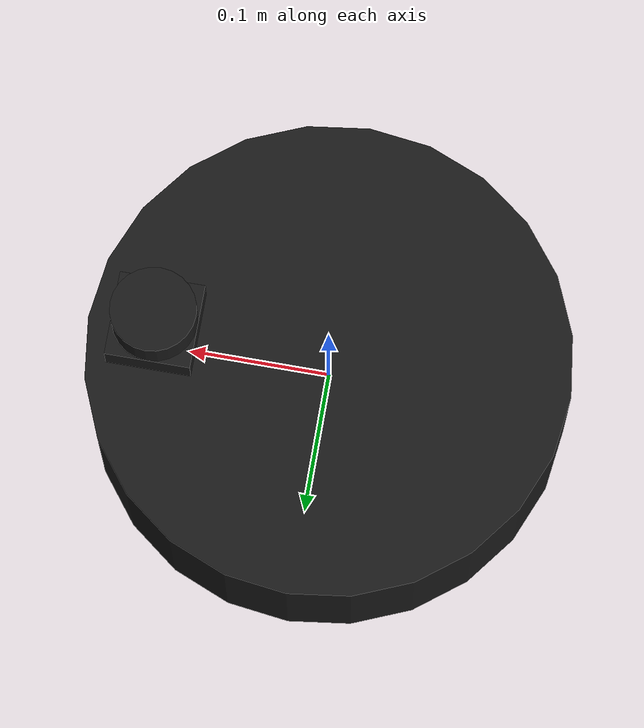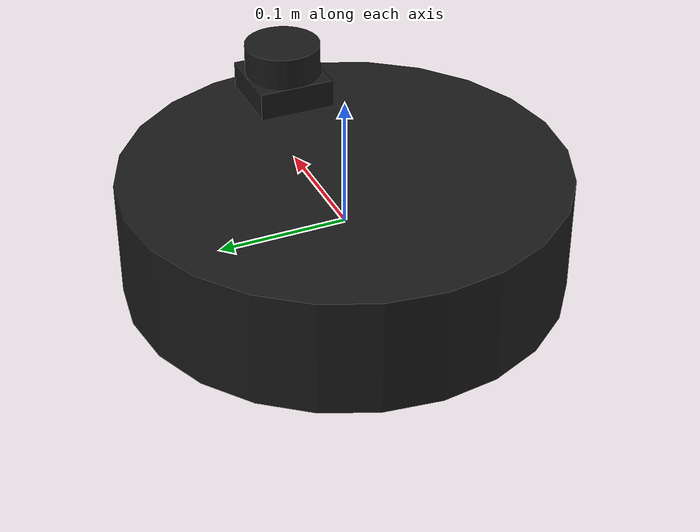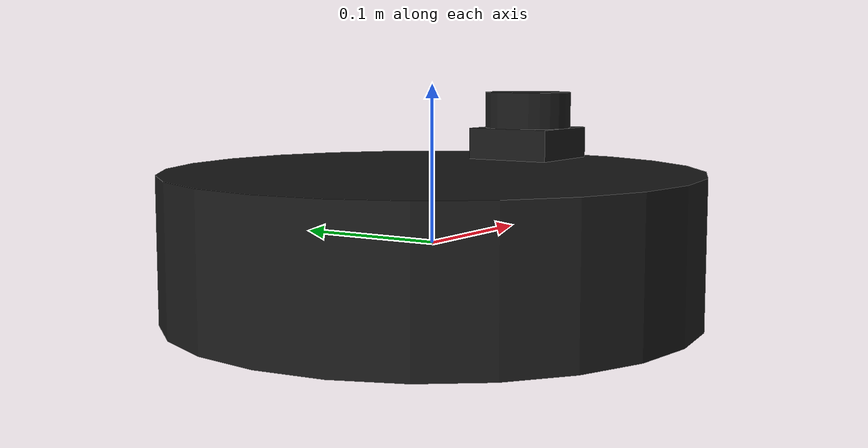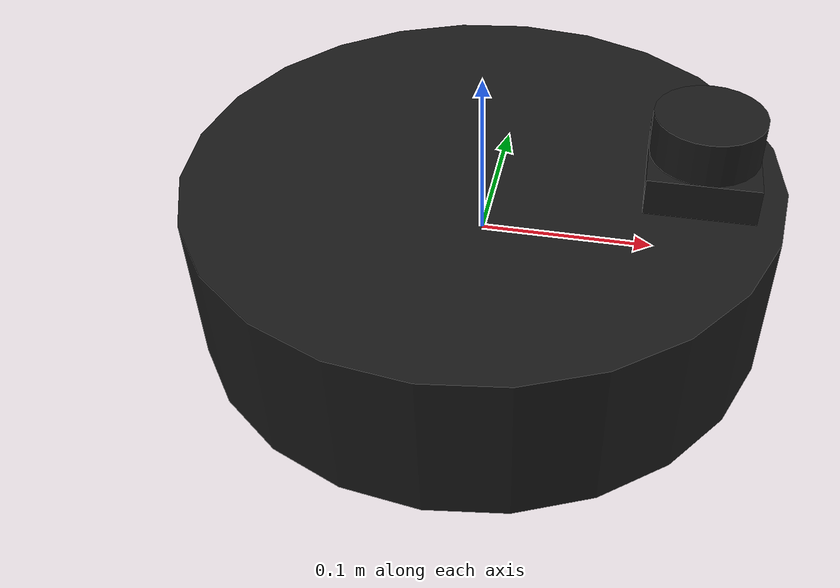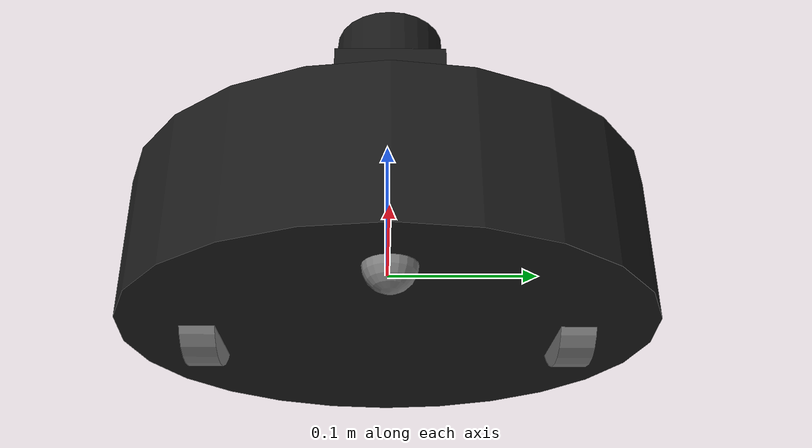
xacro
<?xml version="1.0"?>
<robot xmlns:xacro="http://www.ros.org/wiki/xacro" name="create2">

  <xacro:arg name="use_ros2_control" default="true"/>
  <xacro:arg name="device_path" default="/dev/ttyUSB0"/>
  <xacro:arg name="baud_rate" default="115200"/>

  <!-- Constants -->
  <xacro:property name="base_radius" value="0.17"/>
  <xacro:property name="base_height" value="0.092"/>
  <xacro:property name="wheel_radius" value="0.036"/>
  <xacro:property name="wheel_width" value="0.022"/>
  <xacro:property name="wheel_separation" value="0.235"/>

  <!-- Materials -->
  <material name="black">
    <color rgba="0.1 0.1 0.1 1"/>
  </material>

  <material name="gray">
    <color rgba="0.5 0.5 0.5 1"/>
  </material>

  <!-- Base Link -->
  <link name="base_link">
    <visual>
      <geometry>
        <cylinder radius="${base_radius}" length="${base_height}"/>
      </geometry>
      <material name="black"/>
    </visual>
    <collision>
      <geometry>
        <cylinder radius="${base_radius}" length="${base_height}"/>
      </geometry>
    </collision>
    <inertial>
      <mass value="3.0"/>
      <origin xyz="0 0 0"/>
      <inertia ixx="0.1" ixy="0.0" ixz="0.0" iyy="0.1" iyz="0.0" izz="0.1"/>
    </inertial>
  </link>

  <!-- Left Wheel -->
  <link name="left_wheel_link">
    <visual>
      <geometry>
        <cylinder radius="${wheel_radius}" length="${wheel_width}"/>
      </geometry>
      <origin rpy="1.5708 0 0"/>
      <material name="gray"/>
    </visual>
    <collision>
      <geometry>
        <cylinder radius="${wheel_radius}" length="${wheel_width}"/>
      </geometry>
      <origin rpy="1.5708 0 0"/>
    </collision>
    <inertial>
      <mass value="0.1"/>
      <origin xyz="0 0 0" rpy="1.5708 0 0"/>
      <inertia ixx="0.001" ixy="0.0" ixz="0.0" iyy="0.001" iyz="0.0" izz="0.001"/>
    </inertial>
  </link>

  <joint name="left_wheel_joint" type="continuous">
    <parent link="base_link"/>
    <child link="left_wheel_link"/>
    <origin xyz="0 ${wheel_separation/2} -0.025" rpy="0 0 0"/>
    <axis xyz="0 1 0"/>
    <dynamics damping="0.2" friction="0.1"/>
  </joint>

  <!-- Right Wheel -->
  <link name="right_wheel_link">
    <visual>
      <geometry>
        <cylinder radius="${wheel_radius}" length="${wheel_width}"/>
      </geometry>
      <origin rpy="1.5708 0 0"/>
      <material name="gray"/>
    </visual>
    <collision>
      <geometry>
        <cylinder radius="${wheel_radius}" length="${wheel_width}"/>
      </geometry>
      <origin rpy="1.5708 0 0"/>
    </collision>
    <inertial>
      <mass value="0.1"/>
      <origin xyz="0 0 0" rpy="1.5708 0 0"/>
      <inertia ixx="0.001" ixy="0.0" ixz="0.0" iyy="0.001" iyz="0.0" izz="0.001"/>
    </inertial>
  </link>

  <joint name="right_wheel_joint" type="continuous">
    <parent link="base_link"/>
    <child link="right_wheel_link"/>
    <origin xyz="0 ${-wheel_separation/2} -0.025" rpy="0 0 0"/>
    <axis xyz="0 1 0"/>
    <dynamics damping="0.2" friction="0.1"/>
  </joint>

  <!-- Caster Wheel (for stability) -->
  <link name="caster_link">
    <visual>
      <geometry>
        <sphere radius="0.015"/>
      </geometry>
      <material name="gray"/>
    </visual>
    <collision>
      <geometry>
        <sphere radius="0.015"/>
      </geometry>
    </collision>
    <inertial>
      <mass value="0.01"/>
      <origin xyz="0 0 0"/>
      <inertia ixx="0.0001" ixy="0.0" ixz="0.0" iyy="0.0001" iyz="0.0" izz="0.0001"/>
    </inertial>
  </link>

  <joint name="caster_joint" type="fixed">
    <parent link="base_link"/>
    <child link="caster_link"/>
    <origin xyz="0.12 0 -0.046"/>
  </joint>

  <!-- ROS2 Control -->
  <xacro:if value="$(arg use_ros2_control)">
    <ros2_control name="Create2HardwareInterface" type="system">
      <hardware>
        <plugin>create2_hardware/Create2HardwareInterface</plugin>
        <param name="device">$(arg device_path)</param>
        <param name="baud_rate">$(arg baud_rate)</param>
      </hardware>

      <joint name="left_wheel_joint">
        <command_interface name="velocity">
          <param name="min">-8.72</param>  <!-- -500mm/s / 36mm radius -->
          <param name="max">8.72</param>   <!-- 500mm/s / 36mm radius -->
        </command_interface>
        <state_interface name="position"/>
      </joint>

      <joint name="right_wheel_joint">
        <command_interface name="velocity">
          <param name="min">-8.72</param>
          <param name="max">8.72</param>
        </command_interface>
        <state_interface name="position"/>
      </joint>
    </ros2_control>
  </xacro:if>

  <joint name="laser_joint" type="fixed">
        <parent link="base_link"/>
        <child link="laser"/>
        <origin xyz="0.122 0 0.08" rpy="0 0 3.1415"/>
    </joint>

  <link name="laser">
      <visual>
          <geometry>
              <cylinder radius="0.03" length="0.025"/>
          </geometry>
          <material name="black"/>
      </visual>
      <visual>
          <origin xyz="0 0 -0.025"/>
          <geometry>
            <box size="0.06 0.06 0.025"/>
          </geometry>
          <material name="black"/>
      </visual>
  </link>

</robot>
